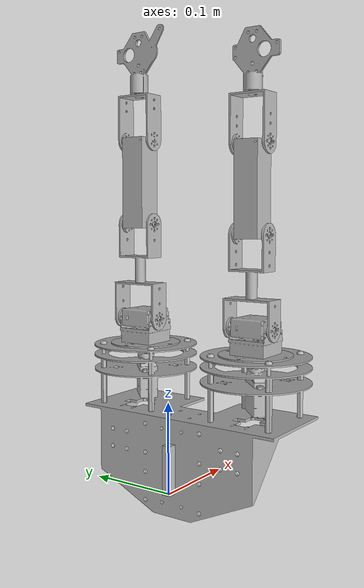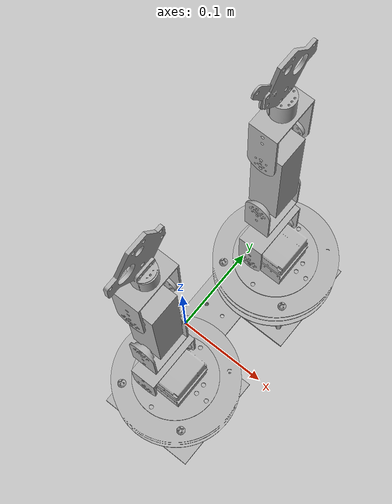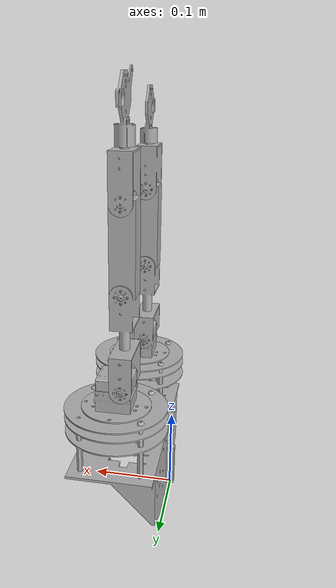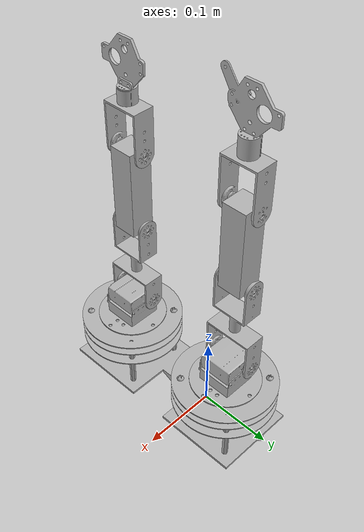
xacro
<?xml version="1.0" ?>
<robot name="doublearm6" xmlns:xacro="http://www.ros.org/wiki/xacro">

<xacro:include filename="$(find doublearm6_description)/urdf/materials.xacro" />
<xacro:include filename="$(find doublearm6_description)/urdf/doublearm6.trans" />
<xacro:include filename="$(find doublearm6_description)/urdf/doublearm6.gazebo" />
<link name="base_link">
  <inertial>
    <origin xyz="0.0 0.0 0.027000000000000003" rpy="0 0 0"/>
    <mass value="0.04239"/>
    <inertia ixx="1.1e-05" iyy="1.1e-05" izz="1e-06" ixy="0.0" iyz="0.0" ixz="0.0"/>
  </inertial>
  <visual>
    <origin xyz="0 0 0" rpy="0 0 0"/>
    <geometry>
      <mesh filename="file://$(find doublearm6_description)/meshes/base_link.stl" scale="0.001 0.001 0.001"/>
    </geometry>
    <material name="silver"/>
  </visual>
  <collision>
    <origin xyz="0 0 0" rpy="0 0 0"/>
    <geometry>
      <mesh filename="file://$(find doublearm6_description)/meshes/base_link.stl" scale="0.001 0.001 0.001"/>
    </geometry>
  </collision>
</link>

<link name="link_l1_1">
  <inertial>
    <origin xyz="-0.03793332038532773 -0.037871637356570745 0.04578503235142668" rpy="0 0 0"/>
    <mass value="0.5725405286418096"/>
    <inertia ixx="0.000559" iyy="0.000559" izz="0.0008" ixy="-1.4e-05" iyz="-1.8e-05" ixz="-1.8e-05"/>
  </inertial>
  <visual>
    <origin xyz="-0.091 -0.11 -0.081" rpy="0 0 0"/>
    <geometry>
      <mesh filename="file://$(find doublearm6_description)/meshes/link_l1_1.stl" scale="0.001 0.001 0.001"/>
    </geometry>
    <material name="silver"/>
  </visual>
  <collision>
    <origin xyz="-0.091 -0.11 -0.081" rpy="0 0 0"/>
    <geometry>
      <mesh filename="file://$(find doublearm6_description)/meshes/link_l1_1.stl" scale="0.001 0.001 0.001"/>
    </geometry>
  </collision>
</link>

<link name="link_l2_1">
  <inertial>
    <origin xyz="-0.0005207139614030395 -0.0011164287562245717 0.018149382974876976" rpy="0 0 0"/>
    <mass value="0.42619982491457814"/>
    <inertia ixx="0.000148" iyy="0.000149" izz="0.00015" ixy="0.0" iyz="6e-06" ixz="0.0"/>
  </inertial>
  <visual>
    <origin xyz="-0.055998 -0.074998 -0.1505" rpy="0 0 0"/>
    <geometry>
      <mesh filename="file://$(find doublearm6_description)/meshes/link_l2_1.stl" scale="0.001 0.001 0.001"/>
    </geometry>
    <material name="silver"/>
  </visual>
  <collision>
    <origin xyz="-0.055998 -0.074998 -0.1505" rpy="0 0 0"/>
    <geometry>
      <mesh filename="file://$(find doublearm6_description)/meshes/link_l2_1.stl" scale="0.001 0.001 0.001"/>
    </geometry>
  </collision>
</link>

<link name="link_l3_1">
  <inertial>
    <origin xyz="2.142431840962411e-07 0.020769849687359627 0.05419211875747576" rpy="0 0 0"/>
    <mass value="0.1621736007348496"/>
    <inertia ixx="0.000276" iyy="0.000222" izz="6.7e-05" ixy="0.0" iyz="-0.0" ixz="0.0"/>
  </inertial>
  <visual>
    <origin xyz="-0.045498 -0.053498 -0.1812" rpy="0 0 0"/>
    <geometry>
      <mesh filename="file://$(find doublearm6_description)/meshes/link_l3_1.stl" scale="0.001 0.001 0.001"/>
    </geometry>
    <material name="silver"/>
  </visual>
  <collision>
    <origin xyz="-0.045498 -0.053498 -0.1812" rpy="0 0 0"/>
    <geometry>
      <mesh filename="file://$(find doublearm6_description)/meshes/link_l3_1.stl" scale="0.001 0.001 0.001"/>
    </geometry>
  </collision>
</link>

<link name="link_l5_1">
  <inertial>
    <origin xyz="3.356788170622016e-07 0.013862584192221826 0.02233739968169607" rpy="0 0 0"/>
    <mass value="0.07341722198230313"/>
    <inertia ixx="5.6e-05" iyy="3.5e-05" izz="2.8e-05" ixy="0.0" iyz="-0.0" ixz="-0.0"/>
  </inertial>
  <visual>
    <origin xyz="-0.045498 -0.060248 -0.3858" rpy="0 0 0"/>
    <geometry>
      <mesh filename="file://$(find doublearm6_description)/meshes/link_l5_1.stl" scale="0.001 0.001 0.001"/>
    </geometry>
    <material name="silver"/>
  </visual>
  <collision>
    <origin xyz="-0.045498 -0.060248 -0.3858" rpy="0 0 0"/>
    <geometry>
      <mesh filename="file://$(find doublearm6_description)/meshes/link_l5_1.stl" scale="0.001 0.001 0.001"/>
    </geometry>
  </collision>
</link>

<link name="link_r1_2">
  <inertial>
    <origin xyz="0.032423804342822826 0.03248548737143005 0.04578503235142707" rpy="0 0 0"/>
    <mass value="0.5725405286418096"/>
    <inertia ixx="0.000559" iyy="0.000559" izz="0.0008" ixy="-1.4e-05" iyz="-1.8e-05" ixz="-1.8e-05"/>
  </inertial>
  <visual>
    <origin xyz="-0.021 0.11 -0.081" rpy="0 0 0"/>
    <geometry>
      <mesh filename="file://$(find doublearm6_description)/meshes/link_r1_2.stl" scale="0.001 0.001 0.001"/>
    </geometry>
    <material name="silver"/>
  </visual>
  <collision>
    <origin xyz="-0.021 0.11 -0.081" rpy="0 0 0"/>
    <geometry>
      <mesh filename="file://$(find doublearm6_description)/meshes/link_r1_2.stl" scale="0.001 0.001 0.001"/>
    </geometry>
  </collision>
</link>

<link name="link_r2_2">
  <inertial>
    <origin xyz="-0.0005205892332521209 -0.0011163040282242548 0.01814938297487731" rpy="0 0 0"/>
    <mass value="0.42619982491457814"/>
    <inertia ixx="0.000148" iyy="0.000149" izz="0.00015" ixy="0.0" iyz="6e-06" ixz="0.0"/>
  </inertial>
  <visual>
    <origin xyz="-0.056355 0.074645 -0.1505" rpy="0 0 0"/>
    <geometry>
      <mesh filename="file://$(find doublearm6_description)/meshes/link_r2_2.stl" scale="0.001 0.001 0.001"/>
    </geometry>
    <material name="silver"/>
  </visual>
  <collision>
    <origin xyz="-0.056355 0.074645 -0.1505" rpy="0 0 0"/>
    <geometry>
      <mesh filename="file://$(find doublearm6_description)/meshes/link_r2_2.stl" scale="0.001 0.001 0.001"/>
    </geometry>
  </collision>
</link>

<link name="link_r3_2">
  <inertial>
    <origin xyz="3.389667726227952e-07 0.02075593734889286 0.04772755616315025" rpy="0 0 0"/>
    <mass value="0.15416928313954215"/>
    <inertia ixx="0.000229" iyy="0.00018" izz="6.1e-05" ixy="0.0" iyz="-0.0" ixz="0.0"/>
  </inertial>
  <visual>
    <origin xyz="-0.045855 0.096145 -0.1812" rpy="0 0 0"/>
    <geometry>
      <mesh filename="file://$(find doublearm6_description)/meshes/link_r3_2.stl" scale="0.001 0.001 0.001"/>
    </geometry>
    <material name="silver"/>
  </visual>
  <collision>
    <origin xyz="-0.045855 0.096145 -0.1812" rpy="0 0 0"/>
    <geometry>
      <mesh filename="file://$(find doublearm6_description)/meshes/link_r3_2.stl" scale="0.001 0.001 0.001"/>
    </geometry>
  </collision>
</link>

<link name="link_r5_2">
  <inertial>
    <origin xyz="4.737695253331786e-07 0.013857055697345438 0.02273700368943865" rpy="0 0 0"/>
    <mass value="0.07244794276885677"/>
    <inertia ixx="5.6e-05" iyy="3.5e-05" izz="2.8e-05" ixy="0.0" iyz="-0.0" ixz="-0.0"/>
  </inertial>
  <visual>
    <origin xyz="-0.045855 0.089395 -0.3756" rpy="0 0 0"/>
    <geometry>
      <mesh filename="file://$(find doublearm6_description)/meshes/link_r5_2.stl" scale="0.001 0.001 0.001"/>
    </geometry>
    <material name="silver"/>
  </visual>
  <collision>
    <origin xyz="-0.045855 0.089395 -0.3756" rpy="0 0 0"/>
    <geometry>
      <mesh filename="file://$(find doublearm6_description)/meshes/link_r5_2.stl" scale="0.001 0.001 0.001"/>
    </geometry>
  </collision>
</link>

<link name="link_r4_2">
  <inertial>
    <origin xyz="3.1569969187787705e-05 0.01411672606458067 0.04747053928862227" rpy="0 0 0"/>
    <mass value="0.6421039903920133"/>
    <inertia ixx="0.000609" iyy="0.000609" izz="8.5e-05" ixy="0.0" iyz="-0.0" ixz="-0.0"/>
  </inertial>
  <visual>
    <origin xyz="-0.045855 0.089395 -0.2796" rpy="0 0 0"/>
    <geometry>
      <mesh filename="file://$(find doublearm6_description)/meshes/link_r4_2.stl" scale="0.001 0.001 0.001"/>
    </geometry>
    <material name="silver"/>
  </visual>
  <collision>
    <origin xyz="-0.045855 0.089395 -0.2796" rpy="0 0 0"/>
    <geometry>
      <mesh filename="file://$(find doublearm6_description)/meshes/link_r4_2.stl" scale="0.001 0.001 0.001"/>
    </geometry>
  </collision>
</link>

<link name="link_l4_1">
  <inertial>
    <origin xyz="3.144524103594615e-05 0.014116601336580041 0.04747053928862105" rpy="0 0 0"/>
    <mass value="0.6421039903920133"/>
    <inertia ixx="0.000609" iyy="0.000609" izz="8.5e-05" ixy="0.0" iyz="-0.0" ixz="-0.0"/>
  </inertial>
  <visual>
    <origin xyz="-0.045498 -0.060248 -0.2898" rpy="0 0 0"/>
    <geometry>
      <mesh filename="file://$(find doublearm6_description)/meshes/link_l4_1.stl" scale="0.001 0.001 0.001"/>
    </geometry>
    <material name="silver"/>
  </visual>
  <collision>
    <origin xyz="-0.045498 -0.060248 -0.2898" rpy="0 0 0"/>
    <geometry>
      <mesh filename="file://$(find doublearm6_description)/meshes/link_l4_1.stl" scale="0.001 0.001 0.001"/>
    </geometry>
  </collision>
</link>

<link name="huagan_1">
  <inertial>
    <origin xyz="0.026062371171957182 -2.2510193602442995e-08 0.02958292769303884" rpy="0 0 0"/>
    <mass value="1.0213757891414847"/>
    <inertia ixx="0.006064" iyy="0.001832" izz="0.006122" ixy="-0.0" iyz="-0.0" ixz="-0.000524"/>
  </inertial>
  <visual>
    <origin xyz="-0.005 0.0 -0.027" rpy="0 0 0"/>
    <geometry>
      <mesh filename="file://$(find doublearm6_description)/meshes/huagan_1.stl" scale="0.001 0.001 0.001"/>
    </geometry>
    <material name="silver"/>
  </visual>
  <collision>
    <origin xyz="-0.005 0.0 -0.027" rpy="0 0 0"/>
    <geometry>
      <mesh filename="file://$(find doublearm6_description)/meshes/huagan_1.stl" scale="0.001 0.001 0.001"/>
    </geometry>
  </collision>
</link>

<link name="link_l6_1">
  <inertial>
    <origin xyz="-4.219824397556915e-06 4.861755351068253e-06 0.0009999999999989462" rpy="0 0 0"/>
    <mass value="0.0012269853788458628"/>
    <inertia ixx="0.0" iyy="0.0" izz="0.0" ixy="-0.0" iyz="0.0" ixz="-0.0"/>
  </inertial>
  <visual>
    <origin xyz="-0.045498 -0.074348 -0.4365" rpy="0 0 0"/>
    <geometry>
      <mesh filename="file://$(find doublearm6_description)/meshes/link_l6_1.stl" scale="0.001 0.001 0.001"/>
    </geometry>
    <material name="silver"/>
  </visual>
  <collision>
    <origin xyz="-0.045498 -0.074348 -0.4365" rpy="0 0 0"/>
    <geometry>
      <mesh filename="file://$(find doublearm6_description)/meshes/link_l6_1.stl" scale="0.001 0.001 0.001"/>
    </geometry>
  </collision>
</link>

<link name="link_l7_1">
  <inertial>
    <origin xyz="-0.00029464905851634554 -0.0006234325772860455 0.027633060488336914" rpy="0 0 0"/>
    <mass value="0.08182541987264973"/>
    <inertia ixx="4.2e-05" iyy="3.4e-05" izz="1.1e-05" ixy="-0.0" iyz="2e-06" ixz="-0.0"/>
  </inertial>
  <visual>
    <origin xyz="-0.045498 -0.074348 -0.4385" rpy="0 0 0"/>
    <geometry>
      <mesh filename="file://$(find doublearm6_description)/meshes/link_l7_1.stl" scale="0.001 0.001 0.001"/>
    </geometry>
    <material name="silver"/>
  </visual>
  <collision>
    <origin xyz="-0.045498 -0.074348 -0.4385" rpy="0 0 0"/>
    <geometry>
      <mesh filename="file://$(find doublearm6_description)/meshes/link_l7_1.stl" scale="0.001 0.001 0.001"/>
    </geometry>
  </collision>
</link>

<link name="link_r6_1">
  <inertial>
    <origin xyz="-4.095096246534147e-06 4.986483348554116e-06 0.001000000000000112" rpy="0 0 0"/>
    <mass value="0.0012269853788458589"/>
    <inertia ixx="0.0" iyy="0.0" izz="0.0" ixy="-0.0" iyz="0.0" ixz="0.0"/>
  </inertial>
  <visual>
    <origin xyz="-0.045855 0.075295 -0.4263" rpy="0 0 0"/>
    <geometry>
      <mesh filename="file://$(find doublearm6_description)/meshes/link_r6_1.stl" scale="0.001 0.001 0.001"/>
    </geometry>
    <material name="silver"/>
  </visual>
  <collision>
    <origin xyz="-0.045855 0.075295 -0.4263" rpy="0 0 0"/>
    <geometry>
      <mesh filename="file://$(find doublearm6_description)/meshes/link_r6_1.stl" scale="0.001 0.001 0.001"/>
    </geometry>
  </collision>
</link>

<link name="link_r7_1">
  <inertial>
    <origin xyz="0.00026102080165230773 -0.0004751890023281108 0.024878450064164337" rpy="0 0 0"/>
    <mass value="0.07059138817324344"/>
    <inertia ixx="3.1e-05" iyy="2.4e-05" izz="8e-06" ixy="-0.0" iyz="1e-06" ixz="0.0"/>
  </inertial>
  <visual>
    <origin xyz="-0.045855 0.075295 -0.4283" rpy="0 0 0"/>
    <geometry>
      <mesh filename="file://$(find doublearm6_description)/meshes/link_r7_1.stl" scale="0.001 0.001 0.001"/>
    </geometry>
    <material name="silver"/>
  </visual>
  <collision>
    <origin xyz="-0.045855 0.075295 -0.4283" rpy="0 0 0"/>
    <geometry>
      <mesh filename="file://$(find doublearm6_description)/meshes/link_r7_1.stl" scale="0.001 0.001 0.001"/>
    </geometry>
  </collision>
</link>

<link name="link_l8_1">
  <inertial>
    <origin xyz="-0.08474400807689672 -0.020399816306156712 -0.507459999999996" rpy="0 0 0"/>
    <mass value="6.165375582648934e-12"/>
    <inertia ixx="0.0" iyy="0.0" izz="0.0" ixy="0.0" iyz="0.0" ixz="0.0"/>
  </inertial>
  <visual>
    <origin xyz="-0.045498 -0.074348 -0.50746" rpy="0 0 0"/>
    <geometry>
      <mesh filename="file://$(find doublearm6_description)/meshes/link_l8_1.stl" scale="0.001 0.001 0.001"/>
    </geometry>
    <material name="silver"/>
  </visual>
  <collision>
    <origin xyz="-0.045498 -0.074348 -0.50746" rpy="0 0 0"/>
    <geometry>
      <mesh filename="file://$(find doublearm6_description)/meshes/link_l8_1.stl" scale="0.001 0.001 0.001"/>
    </geometry>
  </collision>
</link>

<link name="link_r8_1">
  <inertial>
    <origin xyz="-0.08566564748164562 0.02081708319514966 -0.49315999999999616" rpy="0 0 0"/>
    <mass value="6.165375582648934e-12"/>
    <inertia ixx="0.0" iyy="0.0" izz="0.0" ixy="-0.0" iyz="0.0" ixz="0.0"/>
  </inertial>
  <visual>
    <origin xyz="-0.045855 0.075295 -0.49316" rpy="0 0 0"/>
    <geometry>
      <mesh filename="file://$(find doublearm6_description)/meshes/link_r8_1.stl" scale="0.001 0.001 0.001"/>
    </geometry>
    <material name="silver"/>
  </visual>
  <collision>
    <origin xyz="-0.045855 0.075295 -0.49316" rpy="0 0 0"/>
    <geometry>
      <mesh filename="file://$(find doublearm6_description)/meshes/link_r8_1.stl" scale="0.001 0.001 0.001"/>
    </geometry>
  </collision>
</link>

<joint name="fixed_l1" type="fixed">
  <origin xyz="0.086 0.11 0.054" rpy="0 0 0"/>
  <parent link="huagan_1"/>
  <child link="link_l1_1"/>
</joint>

<joint name="l1" type="continuous">
  <origin xyz="-0.035002 -0.035002 0.0695" rpy="0 0 0"/>
  <parent link="link_l1_1"/>
  <child link="link_l2_1"/>
  <axis xyz="0.0 -0.0 -1.0"/>
</joint>

<joint name="l2" type="revolute">
  <origin xyz="-0.0105 -0.0215 0.0307" rpy="0 0 0"/>
  <parent link="link_l2_1"/>
  <child link="link_l3_1"/>
  <axis xyz="0.0 1.0 0.0"/>
  <limit upper="3.141593" lower="-3.141593" effort="100" velocity="100"/>
</joint>

<joint name="l4" type="revolute">
  <origin xyz="0.0 0.0 0.096" rpy="0 0 0"/>
  <parent link="link_l4_1"/>
  <child link="link_l5_1"/>
  <axis xyz="0.0 1.0 0.0"/>
  <limit upper="3.141593" lower="-3.141593" effort="100" velocity="100"/>
</joint>

<joint name="fixed_r1" type="fixed">
  <origin xyz="0.016 -0.11 0.054" rpy="0 0 0"/>
  <parent link="huagan_1"/>
  <child link="link_r1_2"/>
</joint>

<joint name="r1" type="continuous">
  <origin xyz="0.035355 0.035355 0.0695" rpy="0 0 0"/>
  <parent link="link_r1_2"/>
  <child link="link_r2_2"/>
  <axis xyz="0.0 0.0 -1.0"/>
</joint>

<joint name="r2" type="revolute">
  <origin xyz="-0.0105 -0.0215 0.0307" rpy="0 0 0"/>
  <parent link="link_r2_2"/>
  <child link="link_r3_2"/>
  <axis xyz="0.0 1.0 -0.0"/>
  <limit upper="3.141593" lower="-3.141593" effort="100" velocity="100"/>
</joint>

<joint name="r4" type="revolute">
  <origin xyz="0.0 0.0 0.096" rpy="0 0 0"/>
  <parent link="link_r4_2"/>
  <child link="link_r5_2"/>
  <axis xyz="0.0 1.0 0.0"/>
  <limit upper="3.141593" lower="-3.141593" effort="100" velocity="100"/>
</joint>

<joint name="r3" type="revolute">
  <origin xyz="0.0 0.00675 0.0984" rpy="0 0 0"/>
  <parent link="link_r3_2"/>
  <child link="link_r4_2"/>
  <axis xyz="0.0 1.0 0.0"/>
  <limit upper="3.141593" lower="-3.141593" effort="100" velocity="100"/>
</joint>

<joint name="l3" type="revolute">
  <origin xyz="0.0 0.00675 0.1086" rpy="0 0 0"/>
  <parent link="link_l3_1"/>
  <child link="link_l4_1"/>
  <axis xyz="0.0 1.0 0.0"/>
  <limit upper="3.141593" lower="-3.141593" effort="100" velocity="100"/>
</joint>

<joint name="fixed_base" type="fixed">
  <origin xyz="0.005 0.0 0.027" rpy="0 0 0"/>
  <parent link="base_link"/>
  <child link="huagan_1"/>
</joint>

<joint name="l5" type="continuous">
  <origin xyz="0.0 0.0141 0.0507" rpy="0 0 0"/>
  <parent link="link_l5_1"/>
  <child link="link_l6_1"/>
  <axis xyz="0.0 0.0 -1.0"/>
</joint>

<joint name="fixed_l2" type="fixed">
  <origin xyz="0.0 0.0 0.002" rpy="0 0 0"/>
  <parent link="link_l6_1"/>
  <child link="link_l7_1"/>
</joint>

<joint name="r5" type="continuous">
  <origin xyz="0.0 0.0141 0.0507" rpy="0 0 0"/>
  <parent link="link_r5_2"/>
  <child link="link_r6_1"/>
  <axis xyz="0.0 0.0 -1.0"/>
</joint>

<joint name="fixed_r2" type="fixed">
  <origin xyz="0.0 0.0 0.002" rpy="0 0 0"/>
  <parent link="link_r6_1"/>
  <child link="link_r7_1"/>
</joint>

<joint name="fixed_l3" type="fixed">
  <origin xyz="0.0 0.0 0.06896" rpy="0 0 0"/>
  <parent link="link_l7_1"/>
  <child link="link_l8_1"/>
</joint>

<joint name="fixed_r3" type="fixed">
  <origin xyz="0.0 0.0 0.06486" rpy="0 0 0"/>
  <parent link="link_r7_1"/>
  <child link="link_r8_1"/>
</joint>

</robot>

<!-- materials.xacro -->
<robot name="doublearm6" xmlns:xacro="http://www.ros.org/wiki/xacro" >

<material name="silver">
  <color rgba="0.700 0.700 0.700 1.000"/>
</material>

</robot>

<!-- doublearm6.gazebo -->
<robot name="doublearm6" xmlns:xacro="http://www.ros.org/wiki/xacro" >

<xacro:property name="body_color" value="Gazebo/Silver" />

<gazebo>
  <plugin name="control" filename="libgazebo_ros_control.so"/>
</gazebo>
<gazebo reference="base_link">
  <material>${body_color}</material>
  <mu1>0.2</mu1>
  <mu2>0.2</mu2>
  <self_collide>true</self_collide>
  <gravity>true</gravity>
</gazebo>

<gazebo reference="link_l1_1">
  <material>${body_color}</material>
  <mu1>0.2</mu1>
  <mu2>0.2</mu2>
  <self_collide>true</self_collide>
</gazebo>

<gazebo reference="link_l2_1">
  <material>${body_color}</material>
  <mu1>0.2</mu1>
  <mu2>0.2</mu2>
  <self_collide>true</self_collide>
</gazebo>

<gazebo reference="link_l3_1">
  <material>${body_color}</material>
  <mu1>0.2</mu1>
  <mu2>0.2</mu2>
  <self_collide>true</self_collide>
</gazebo>

<gazebo reference="link_l5_1">
  <material>${body_color}</material>
  <mu1>0.2</mu1>
  <mu2>0.2</mu2>
  <self_collide>true</self_collide>
</gazebo>

<gazebo reference="link_r1_2">
  <material>${body_color}</material>
  <mu1>0.2</mu1>
  <mu2>0.2</mu2>
  <self_collide>true</self_collide>
</gazebo>

<gazebo reference="link_r2_2">
  <material>${body_color}</material>
  <mu1>0.2</mu1>
  <mu2>0.2</mu2>
  <self_collide>true</self_collide>
</gazebo>

<gazebo reference="link_r3_2">
  <material>${body_color}</material>
  <mu1>0.2</mu1>
  <mu2>0.2</mu2>
  <self_collide>true</self_collide>
</gazebo>

<gazebo reference="link_r5_2">
  <material>${body_color}</material>
  <mu1>0.2</mu1>
  <mu2>0.2</mu2>
  <self_collide>true</self_collide>
</gazebo>

<gazebo reference="link_r4_2">
  <material>${body_color}</material>
  <mu1>0.2</mu1>
  <mu2>0.2</mu2>
  <self_collide>true</self_collide>
</gazebo>

<gazebo reference="link_l4_1">
  <material>${body_color}</material>
  <mu1>0.2</mu1>
  <mu2>0.2</mu2>
  <self_collide>true</self_collide>
</gazebo>

<gazebo reference="huagan_1">
  <material>${body_color}</material>
  <mu1>0.2</mu1>
  <mu2>0.2</mu2>
  <self_collide>true</self_collide>
</gazebo>

<gazebo reference="link_l6_1">
  <material>${body_color}</material>
  <mu1>0.2</mu1>
  <mu2>0.2</mu2>
  <self_collide>true</self_collide>
</gazebo>

<gazebo reference="link_l7_1">
  <material>${body_color}</material>
  <mu1>0.2</mu1>
  <mu2>0.2</mu2>
  <self_collide>true</self_collide>
</gazebo>

<gazebo reference="link_r6_1">
  <material>${body_color}</material>
  <mu1>0.2</mu1>
  <mu2>0.2</mu2>
  <self_collide>true</self_collide>
</gazebo>

<gazebo reference="link_r7_1">
  <material>${body_color}</material>
  <mu1>0.2</mu1>
  <mu2>0.2</mu2>
  <self_collide>true</self_collide>
</gazebo>

<gazebo reference="link_l8_1">
  <material>${body_color}</material>
  <mu1>0.2</mu1>
  <mu2>0.2</mu2>
  <self_collide>true</self_collide>
</gazebo>

<gazebo reference="link_r8_1">
  <material>${body_color}</material>
  <mu1>0.2</mu1>
  <mu2>0.2</mu2>
  <self_collide>true</self_collide>
</gazebo>

</robot>
